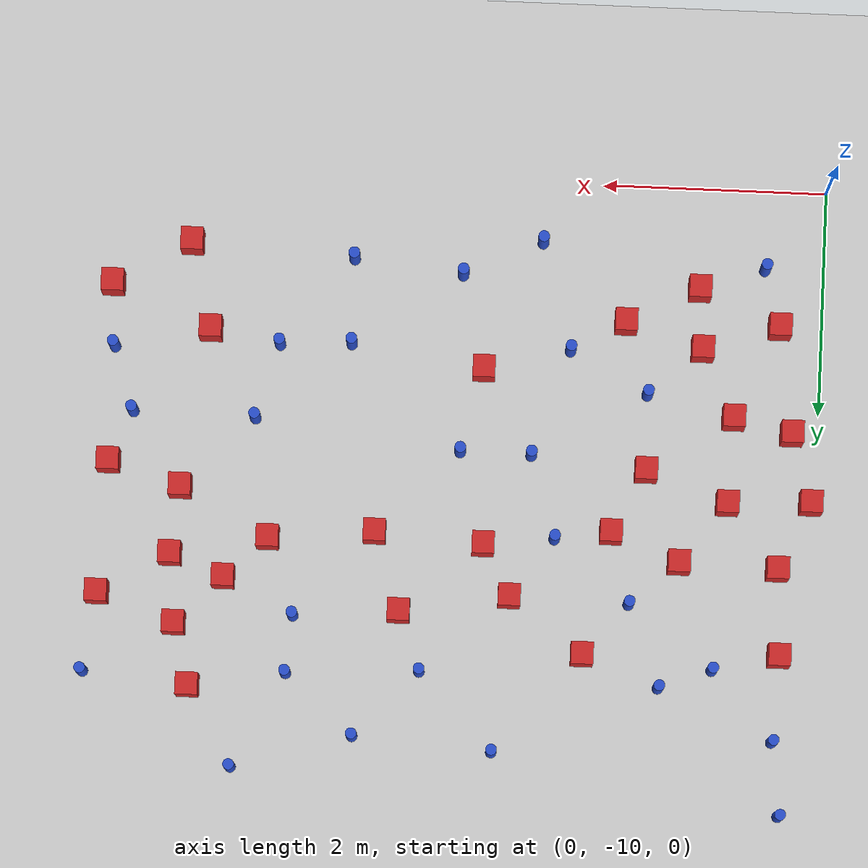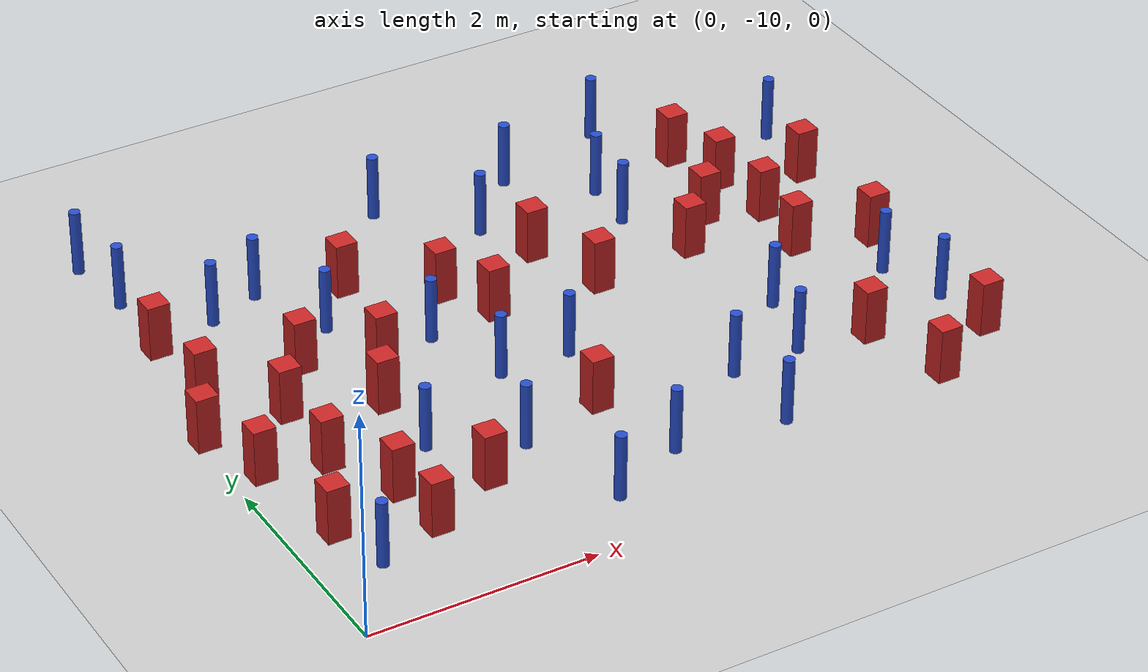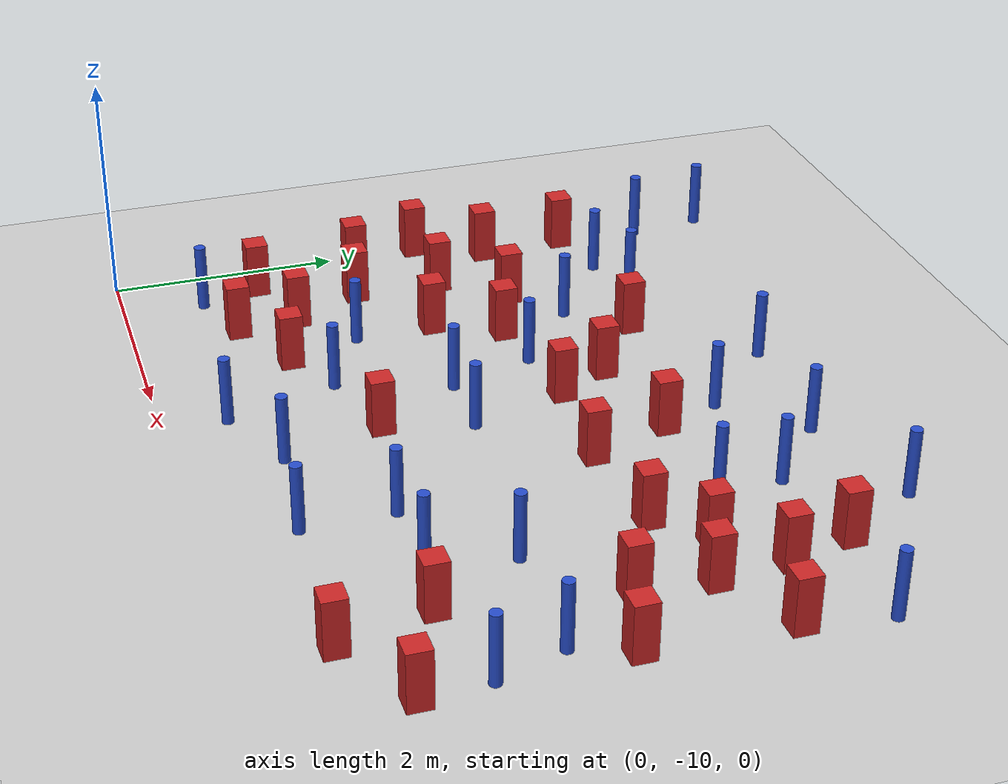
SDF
<sdf version="1.6">
 <world name="default">
  <model name="ground_plane">
   <static>1</static>
   <link name="link">
    <collision name="collision">
     <geometry><plane><normal>0 0 1</normal><size>100 100</size></plane></geometry>
     <surface><friction><ode><mu>100</mu><mu2>50</mu2></ode></friction></surface>
    </collision>
    <visual name="visual">
     <cast_shadows>0</cast_shadows>
     <geometry><plane><normal>0 0 1</normal><size>100 100</size></plane></geometry>
     <material>
      <ambient>1.0 1.0 1.0 1.0</ambient>
      <diffuse>0.8 0.8 0.8 1.0</diffuse>
      <specular>0.01 0.01 0.01 1.000000</specular>
     </material>
    </visual>
   </link>
  </model>
  <model name="square_post_obstacle17">
   <static>true</static>
   <pose>0.378305085071 -8.76689571817 1.91545236811e-07 -7.35059704564e-06 1.12565212e-07 2.39332434364e-05</pose>
   <link name="link">
    <pose>0 0 0.25 0 -0 0</pose>
    <inertial>
     <mass>100</mass>
     <inertia>
      <ixx>0.166667</ixx>
      <ixy>0</ixy>
      <ixz>0</ixz>
      <iyy>0.166667</iyy>
      <iyz>0</iyz>
      <izz>0.166667</izz>
     </inertia>
    </inertial>
    <collision name="collision"><geometry><box><size>.2 .2 .5</size></box></geometry></collision>
    <visual name="visual">
     <geometry><box><size>.2 .2 .5</size></box></geometry>
     <material>
      <script><name>Gazebo/Red</name><uri>file://media/materials/scripts/gazebo.material</uri></script>
     </material>
    </visual>
   </link>
  </model>
  <model name="square_post_obstacle18">
   <static>true</static>
   <pose>1.75431721817 -8.75832268951 1.91545236811e-07 -7.35059704564e-06 1.12565212e-07 2.39332434364e-05</pose>
   <link name="link">
    <pose>0 0 0.25 0 -0 0</pose>
    <inertial>
     <mass>100</mass>
     <inertia>
      <ixx>0.166667</ixx>
      <ixy>0</ixy>
      <ixz>0</ixz>
      <iyy>0.166667</iyy>
      <iyz>0</iyz>
      <izz>0.166667</izz>
     </inertia>
    </inertial>
    <collision name="collision"><geometry><box><size>.2 .2 .5</size></box></geometry></collision>
    <visual name="visual">
     <geometry><box><size>.2 .2 .5</size></box></geometry>
     <material>
      <script><name>Gazebo/Red</name><uri>file://media/materials/scripts/gazebo.material</uri></script>
     </material>
    </visual>
   </link>
  </model>
  <model name="square_post_obstacle20">
   <static>true</static>
   <pose>1.10523010317 -9.08272756877 1.91545236811e-07 -7.35059704564e-06 1.12565212e-07 2.39332434364e-05</pose>
   <link name="link">
    <pose>0 0 0.25 0 -0 0</pose>
    <inertial>
     <mass>100</mass>
     <inertia>
      <ixx>0.166667</ixx>
      <ixy>0</ixy>
      <ixz>0</ixz>
      <iyy>0.166667</iyy>
      <iyz>0</iyz>
      <izz>0.166667</izz>
     </inertia>
    </inertial>
    <collision name="collision"><geometry><box><size>.2 .2 .5</size></box></geometry></collision>
    <visual name="visual">
     <geometry><box><size>.2 .2 .5</size></box></geometry>
     <material>
      <script><name>Gazebo/Red</name><uri>file://media/materials/scripts/gazebo.material</uri></script>
     </material>
    </visual>
   </link>
  </model>
  <model name="pole_obstacle12">
   <static>true</static>
   <pose>5.12868795142 -4.64596688492 7.38925637345e-09 -8.47170692796e-08 1.24976764786e-08 -1.74513093032e-07</pose>
   <link name="link">
    <pose>0 0 0.3 0 -0 0</pose>
    <inertial>
     <mass>1</mass>
     <inertia><ixx>0.145833</ixx><ixy>0</ixy><ixz>0</ixz><iyy>0.145833</iyy><iyz>0</iyz><izz>0.125</izz></inertia>
    </inertial>
    <collision name="collision">
     <geometry><cylinder><radius>0.05</radius><length>.6</length></cylinder></geometry>
    </collision>
    <visual name="visual">
     <geometry><cylinder><radius>0.05</radius><length>.6</length></cylinder></geometry>
     <material>
      <script><name>Gazebo/Blue</name><uri>file://media/materials/scripts/gazebo.material</uri></script>
     </material>
    </visual>
   </link>
  </model>
  <model name="pole_obstacle17">
   <static>true</static>
   <pose>2.55404424358 -7.53747133747 7.38925637345e-09 -8.47170692798e-08 1.24976765033e-08 -1.74513093019e-07</pose>
   <link name="link">
    <pose>0 0 0.3 0 -0 0</pose>
    <inertial>
     <mass>1</mass>
     <inertia><ixx>0.145833</ixx><ixy>0</ixy><ixz>0</ixz><iyy>0.145833</iyy><iyz>0</iyz><izz>0.125</izz></inertia>
    </inertial>
    <collision name="collision">
     <geometry><cylinder><radius>0.05</radius><length>.6</length></cylinder></geometry>
    </collision>
    <visual name="visual">
     <geometry><cylinder><radius>0.05</radius><length>.6</length></cylinder></geometry>
     <material>
      <script><name>Gazebo/Blue</name><uri>file://media/materials/scripts/gazebo.material</uri></script>
     </material>
    </visual>
   </link>
  </model>
  <model name="square_post_obstacle28">
   <static>true</static>
   <pose>4.87596117237 -6.70116491574 1.91545236811e-07 -7.35059704564e-06 1.12565212e-07 2.39332434364e-05</pose>
   <link name="link">
    <pose>0 0 0.25 0 -0 0</pose>
    <inertial>
     <mass>100</mass>
     <inertia>
      <ixx>0.166667</ixx>
      <ixy>0</ixy>
      <ixz>0</ixz>
      <iyy>0.166667</iyy>
      <iyz>0</iyz>
      <izz>0.166667</izz>
     </inertia>
    </inertial>
    <collision name="collision"><geometry><box><size>.2 .2 .5</size></box></geometry></collision>
    <visual name="visual">
     <geometry><box><size>.2 .2 .5</size></box></geometry>
     <material>
      <script><name>Gazebo/Red</name><uri>file://media/materials/scripts/gazebo.material</uri></script>
     </material>
    </visual>
   </link>
  </model>
  <model name="pole_obstacle23">
   <static>true</static>
   <pose>4.83909633867 -8.44591866504 7.38925637345e-09 -8.471706928e-08 1.24976765081e-08 -1.74513093015e-07</pose>
   <link name="link">
    <pose>0 0 0.3 0 -0 0</pose>
    <inertial>
     <mass>1</mass>
     <inertia><ixx>0.145833</ixx><ixy>0</ixy><ixz>0</ixz><iyy>0.145833</iyy><iyz>0</iyz><izz>0.125</izz></inertia>
    </inertial>
    <collision name="collision">
     <geometry><cylinder><radius>0.05</radius><length>.6</length></cylinder></geometry>
    </collision>
    <visual name="visual">
     <geometry><cylinder><radius>0.05</radius><length>.6</length></cylinder></geometry>
     <material>
      <script><name>Gazebo/Blue</name><uri>file://media/materials/scripts/gazebo.material</uri></script>
     </material>
    </visual>
   </link>
  </model>
  <model name="square_post_obstacle37">
   <static>true</static>
   <pose>0.789755599184 -7.16678576911 1.91545236811e-07 -7.35059704564e-06 1.12565212e-07 2.39332434364e-05</pose>
   <link name="link">
    <pose>0 0 0.25 0 -0 0</pose>
    <inertial>
     <mass>100</mass>
     <inertia>
      <ixx>0.166667</ixx>
      <ixy>0</ixy>
      <ixz>0</ixz>
      <iyy>0.166667</iyy>
      <iyz>0</iyz>
      <izz>0.166667</izz>
     </inertia>
    </inertial>
    <collision name="collision"><geometry><box><size>.2 .2 .5</size></box></geometry></collision>
    <visual name="visual">
     <geometry><box><size>.2 .2 .5</size></box></geometry>
     <material>
      <script><name>Gazebo/Red</name><uri>file://media/materials/scripts/gazebo.material</uri></script>
     </material>
    </visual>
   </link>
  </model>
  <model name="square_post_obstacle38">
   <static>true</static>
   <pose>0.28171391476 -5.82311610043 1.91545236811e-07 -7.35059704564e-06 1.12565212e-07 2.39332434364e-05</pose>
   <link name="link">
    <pose>0 0 0.25 0 -0 0</pose>
    <inertial>
     <mass>100</mass>
     <inertia>
      <ixx>0.166667</ixx>
      <ixy>0</ixy>
      <ixz>0</ixz>
      <iyy>0.166667</iyy>
      <iyz>0</iyz>
      <izz>0.166667</izz>
     </inertia>
    </inertial>
    <collision name="collision"><geometry><box><size>.2 .2 .5</size></box></geometry></collision>
    <visual name="visual">
     <geometry><box><size>.2 .2 .5</size></box></geometry>
     <material>
      <script><name>Gazebo/Red</name><uri>file://media/materials/scripts/gazebo.material</uri></script>
     </material>
    </visual>
   </link>
  </model>
  <model name="square_post_obstacle46">
   <static>true</static>
   <pose>0.761725704629 -7.93575048739 1.91545236811e-07 -7.35059704564e-06 1.12565212e-07 2.39332434364e-05</pose>
   <link name="link">
    <pose>0 0 0.25 0 -0 0</pose>
    <inertial>
     <mass>100</mass>
     <inertia>
      <ixx>0.166667</ixx>
      <ixy>0</ixy>
      <ixz>0</ixz>
      <iyy>0.166667</iyy>
      <iyz>0</iyz>
      <izz>0.166667</izz>
     </inertia>
    </inertial>
    <collision name="collision"><geometry><box><size>.2 .2 .5</size></box></geometry></collision>
    <visual name="visual">
     <geometry><box><size>.2 .2 .5</size></box></geometry>
     <material>
      <script><name>Gazebo/Red</name><uri>file://media/materials/scripts/gazebo.material</uri></script>
     </material>
    </visual>
   </link>
  </model>
  <model name="pole_obstacle47">
   <static>true</static>
   <pose>5.03255721276 -7.77409203285 7.38925637345e-09 -8.47170692796e-08 1.24976764786e-08 -1.74513093032e-07</pose>
   <link name="link">
    <pose>0 0 0.3 0 -0 0</pose>
    <inertial>
     <mass>1</mass>
     <inertia><ixx>0.145833</ixx><ixy>0</ixy><ixz>0</ixz><iyy>0.145833</iyy><iyz>0</iyz><izz>0.125</izz></inertia>
    </inertial>
    <collision name="collision">
     <geometry><cylinder><radius>0.05</radius><length>.6</length></cylinder></geometry>
    </collision>
    <visual name="visual">
     <geometry><cylinder><radius>0.05</radius><length>.6</length></cylinder></geometry>
     <material>
      <script><name>Gazebo/Blue</name><uri>file://media/materials/scripts/gazebo.material</uri></script>
     </material>
    </visual>
   </link>
  </model>
  <model name="pole_obstacle51">
   <static>true</static>
   <pose>3.22430424299 -9.13767758428 7.38925637345e-09 -8.47170692793e-08 1.24976764408e-08 -1.74513093041e-07</pose>
   <link name="link">
    <pose>0 0 0.3 0 -0 0</pose>
    <inertial>
     <mass>1</mass>
     <inertia><ixx>0.145833</ixx><ixy>0</ixy><ixz>0</ixz><iyy>0.145833</iyy><iyz>0</iyz><izz>0.125</izz></inertia>
    </inertial>
    <collision name="collision">
     <geometry><cylinder><radius>0.05</radius><length>.6</length></cylinder></geometry>
    </collision>
    <visual name="visual">
     <geometry><cylinder><radius>0.05</radius><length>.6</length></cylinder></geometry>
     <material>
      <script><name>Gazebo/Blue</name><uri>file://media/materials/scripts/gazebo.material</uri></script>
     </material>
    </visual>
   </link>
  </model>
  <model name="square_post_obstacle58">
   <static>true</static>
   <pose>1.20276633188 -6.62121261251 1.91545236811e-07 -7.35059704564e-06 1.12565212e-07 2.39332434364e-05</pose>
   <link name="link">
    <pose>0 0 0.25 0 -0 0</pose>
    <inertial>
     <mass>100</mass>
     <inertia>
      <ixx>0.166667</ixx>
      <ixy>0</ixy>
      <ixz>0</ixz>
      <iyy>0.166667</iyy>
      <iyz>0</iyz>
      <izz>0.166667</izz>
     </inertia>
    </inertial>
    <collision name="collision"><geometry><box><size>.2 .2 .5</size></box></geometry></collision>
    <visual name="visual">
     <geometry><box><size>.2 .2 .5</size></box></geometry>
     <material>
      <script><name>Gazebo/Red</name><uri>file://media/materials/scripts/gazebo.material</uri></script>
     </material>
    </visual>
   </link>
  </model>
  <model name="square_post_obstacle63">
   <static>true</static>
   <pose>2.95366800294 -6.71618311953 1.91545236811e-07 -7.35059704564e-06 1.12565212e-07 2.39332434364e-05</pose>
   <link name="link">
    <pose>0 0 0.25 0 -0 0</pose>
    <inertial>
     <mass>100</mass>
     <inertia>
      <ixx>0.166667</ixx>
      <ixy>0</ixy>
      <ixz>0</ixz>
      <iyy>0.166667</iyy>
      <iyz>0</iyz>
      <izz>0.166667</izz>
     </inertia>
    </inertial>
    <collision name="collision"><geometry><box><size>.2 .2 .5</size></box></geometry></collision>
    <visual name="visual">
     <geometry><box><size>.2 .2 .5</size></box></geometry>
     <material>
      <script><name>Gazebo/Red</name><uri>file://media/materials/scripts/gazebo.material</uri></script>
     </material>
    </visual>
   </link>
  </model>
  <model name="pole_obstacle63">
   <static>true</static>
   <pose>2.31922506591 -6.79592885103 7.38925637345e-09 -8.47170692798e-08 1.24976765033e-08 -1.74513093019e-07</pose>
   <link name="link">
    <pose>0 0 0.3 0 -0 0</pose>
    <inertial>
     <mass>1</mass>
     <inertia><ixx>0.145833</ixx><ixy>0</ixy><ixz>0</ixz><iyy>0.145833</iyy><iyz>0</iyz><izz>0.125</izz></inertia>
    </inertial>
    <collision name="collision">
     <geometry><cylinder><radius>0.05</radius><length>.6</length></cylinder></geometry>
    </collision>
    <visual name="visual">
     <geometry><cylinder><radius>0.05</radius><length>.6</length></cylinder></geometry>
     <material>
      <script><name>Gazebo/Blue</name><uri>file://media/materials/scripts/gazebo.material</uri></script>
     </material>
    </visual>
   </link>
  </model>
  <model name="pole_obstacle64">
   <static>true</static>
   <pose>3.19070139623 -7.54454058409 7.38925637345e-09 -8.47170692798e-08 1.24976765033e-08 -1.74513093019e-07</pose>
   <link name="link">
    <pose>0 0 0.3 0 -0 0</pose>
    <inertial>
     <mass>1</mass>
     <inertia><ixx>0.145833</ixx><ixy>0</ixy><ixz>0</ixz><iyy>0.145833</iyy><iyz>0</iyz><izz>0.125</izz></inertia>
    </inertial>
    <collision name="collision">
     <geometry><cylinder><radius>0.05</radius><length>.6</length></cylinder></geometry>
    </collision>
    <visual name="visual">
     <geometry><cylinder><radius>0.05</radius><length>.6</length></cylinder></geometry>
     <material>
      <script><name>Gazebo/Blue</name><uri>file://media/materials/scripts/gazebo.material</uri></script>
     </material>
    </visual>
   </link>
  </model>
  <model name="pole_obstacle65">
   <static>true</static>
   <pose>2.80988441351 -4.86871157871 7.38925637345e-09 -8.47170692798e-08 1.24976765033e-08 -1.74513093019e-07</pose>
   <link name="link">
    <pose>0 0 0.3 0 -0 0</pose>
    <inertial>
     <mass>1</mass>
     <inertia><ixx>0.145833</ixx><ixy>0</ixy><ixz>0</ixz><iyy>0.145833</iyy><iyz>0</iyz><izz>0.125</izz></inertia>
    </inertial>
    <collision name="collision">
     <geometry><cylinder><radius>0.05</radius><length>.6</length></cylinder></geometry>
    </collision>
    <visual name="visual">
     <geometry><cylinder><radius>0.05</radius><length>.6</length></cylinder></geometry>
     <material>
      <script><name>Gazebo/Blue</name><uri>file://media/materials/scripts/gazebo.material</uri></script>
     </material>
    </visual>
   </link>
  </model>
  <model name="square_post_obstacle72">
   <static>true</static>
   <pose>5.74209541213 -6.52342863693 1.91545236811e-07 -7.35059704564e-06 1.12565212e-07 2.39332434364e-05</pose>
   <link name="link">
    <pose>0 0 0.25 0 -0 0</pose>
    <inertial>
     <mass>100</mass>
     <inertia>
      <ixx>0.166667</ixx>
      <ixy>0</ixy>
      <ixz>0</ixz>
      <iyy>0.166667</iyy>
      <iyz>0</iyz>
      <izz>0.166667</izz>
     </inertia>
    </inertial>
    <collision name="collision"><geometry><box><size>.2 .2 .5</size></box></geometry></collision>
    <visual name="visual">
     <geometry><box><size>.2 .2 .5</size></box></geometry>
     <material>
      <script><name>Gazebo/Red</name><uri>file://media/materials/scripts/gazebo.material</uri></script>
     </material>
    </visual>
   </link>
  </model>
  <model name="square_post_obstacle73">
   <static>true</static>
   <pose>3.68331431098 -6.08949857264 1.91545236811e-07 -7.35059704564e-06 1.12565212e-07 2.39332434364e-05</pose>
   <link name="link">
    <pose>0 0 0.25 0 -0 0</pose>
    <inertial>
     <mass>100</mass>
     <inertia>
      <ixx>0.166667</ixx>
      <ixy>0</ixy>
      <ixz>0</ixz>
      <iyy>0.166667</iyy>
      <iyz>0</iyz>
      <izz>0.166667</izz>
     </inertia>
    </inertial>
    <collision name="collision"><geometry><box><size>.2 .2 .5</size></box></geometry></collision>
    <visual name="visual">
     <geometry><box><size>.2 .2 .5</size></box></geometry>
     <material>
      <script><name>Gazebo/Red</name><uri>file://media/materials/scripts/gazebo.material</uri></script>
     </material>
    </visual>
   </link>
  </model>
  <model name="pole_obstacle71">
   <static>true</static>
   <pose>4.19760687617 -8.47725525258 7.38925637345e-09 -8.471706928e-08 1.24976765081e-08 -1.74513093015e-07</pose>
   <link name="link">
    <pose>0 0 0.3 0 -0 0</pose>
    <inertial>
     <mass>1</mass>
     <inertia><ixx>0.145833</ixx><ixy>0</ixy><ixz>0</ixz><iyy>0.145833</iyy><iyz>0</iyz><izz>0.125</izz></inertia>
    </inertial>
    <collision name="collision">
     <geometry><cylinder><radius>0.05</radius><length>.6</length></cylinder></geometry>
    </collision>
    <visual name="visual">
     <geometry><cylinder><radius>0.05</radius><length>.6</length></cylinder></geometry>
     <material>
      <script><name>Gazebo/Blue</name><uri>file://media/materials/scripts/gazebo.material</uri></script>
     </material>
    </visual>
   </link>
  </model>
  <model name="pole_obstacle75">
   <static>true</static>
   <pose>0.233361145274 -4.39597385954 7.38925637345e-09 -8.471706928e-08 1.24976765124e-08 -1.74513093014e-07</pose>
   <link name="link">
    <pose>0 0 0.3 0 -0 0</pose>
    <inertial>
     <mass>1</mass>
     <inertia><ixx>0.145833</ixx><ixy>0</ixy><ixz>0</ixz><iyy>0.145833</iyy><iyz>0</iyz><izz>0.125</izz></inertia>
    </inertial>
    <collision name="collision">
     <geometry><cylinder><radius>0.05</radius><length>.6</length></cylinder></geometry>
    </collision>
    <visual name="visual">
     <geometry><cylinder><radius>0.05</radius><length>.6</length></cylinder></geometry>
     <material>
      <script><name>Gazebo/Blue</name><uri>file://media/materials/scripts/gazebo.material</uri></script>
     </material>
    </visual>
   </link>
  </model>
  <model name="pole_obstacle88">
   <static>true</static>
   <pose>4.20229255505 -9.24324750124 7.38925637345e-09 -8.471706928e-08 1.24976765081e-08 -1.74513093015e-07</pose>
   <link name="link">
    <pose>0 0 0.3 0 -0 0</pose>
    <inertial>
     <mass>1</mass>
     <inertia><ixx>0.145833</ixx><ixy>0</ixy><ixz>0</ixz><iyy>0.145833</iyy><iyz>0</iyz><izz>0.125</izz></inertia>
    </inertial>
    <collision name="collision">
     <geometry><cylinder><radius>0.05</radius><length>.6</length></cylinder></geometry>
    </collision>
    <visual name="visual">
     <geometry><cylinder><radius>0.05</radius><length>.6</length></cylinder></geometry>
     <material>
      <script><name>Gazebo/Blue</name><uri>file://media/materials/scripts/gazebo.material</uri></script>
     </material>
    </visual>
   </link>
  </model>
  <model name="pole_obstacle89">
   <static>true</static>
   <pose>4.67002716713 -5.50127685613 7.38925637345e-09 -8.47170692796e-08 1.24976764786e-08 -1.74513093032e-07</pose>
   <link name="link">
    <pose>0 0 0.3 0 -0 0</pose>
    <inertial>
     <mass>1</mass>
     <inertia><ixx>0.145833</ixx><ixy>0</ixy><ixz>0</ixz><iyy>0.145833</iyy><iyz>0</iyz><izz>0.125</izz></inertia>
    </inertial>
    <collision name="collision">
     <geometry><cylinder><radius>0.05</radius><length>.6</length></cylinder></geometry>
    </collision>
    <visual name="visual">
     <geometry><cylinder><radius>0.05</radius><length>.6</length></cylinder></geometry>
     <material>
      <script><name>Gazebo/Blue</name><uri>file://media/materials/scripts/gazebo.material</uri></script>
     </material>
    </visual>
   </link>
  </model>
  <model name="square_post_obstacle86">
   <static>true</static>
   <pose>5.6742882965 -7.12790045247 1.91545236811e-07 -7.35059704564e-06 1.12565212e-07 2.39332434364e-05</pose>
   <link name="link">
    <pose>0 0 0.25 0 -0 0</pose>
    <inertial>
     <mass>100</mass>
     <inertia>
      <ixx>0.166667</ixx>
      <ixy>0</ixy>
      <ixz>0</ixz>
      <iyy>0.166667</iyy>
      <iyz>0</iyz>
      <izz>0.166667</izz>
     </inertia>
    </inertial>
    <collision name="collision"><geometry><box><size>.2 .2 .5</size></box></geometry></collision>
    <visual name="visual">
     <geometry><box><size>.2 .2 .5</size></box></geometry>
     <material>
      <script><name>Gazebo/Red</name><uri>file://media/materials/scripts/gazebo.material</uri></script>
     </material>
    </visual>
   </link>
  </model>
  <model name="square_post_obstacle88">
   <static>true</static>
   <pose>5.65800390586 -9.32707592676 1.91545236811e-07 -7.35059704564e-06 1.12565212e-07 2.39332434364e-05</pose>
   <link name="link">
    <pose>0 0 0.25 0 -0 0</pose>
    <inertial>
     <mass>100</mass>
     <inertia>
      <ixx>0.166667</ixx>
      <ixy>0</ixy>
      <ixz>0</ixz>
      <iyy>0.166667</iyy>
      <iyz>0</iyz>
      <izz>0.166667</izz>
     </inertia>
    </inertial>
    <collision name="collision"><geometry><box><size>.2 .2 .5</size></box></geometry></collision>
    <visual name="visual">
     <geometry><box><size>.2 .2 .5</size></box></geometry>
     <material>
      <script><name>Gazebo/Red</name><uri>file://media/materials/scripts/gazebo.material</uri></script>
     </material>
    </visual>
   </link>
  </model>
  <model name="square_post_obstacle89">
   <static>true</static>
   <pose>5.53662648617 -5.3548079058 1.91545236811e-07 -7.35059704564e-06 1.12565212e-07 2.39332434364e-05</pose>
   <link name="link">
    <pose>0 0 0.25 0 -0 0</pose>
    <inertial>
     <mass>100</mass>
     <inertia>
      <ixx>0.166667</ixx>
      <ixy>0</ixy>
      <ixz>0</ixz>
      <iyy>0.166667</iyy>
      <iyz>0</iyz>
      <izz>0.166667</izz>
     </inertia>
    </inertial>
    <collision name="collision"><geometry><box><size>.2 .2 .5</size></box></geometry></collision>
    <visual name="visual">
     <geometry><box><size>.2 .2 .5</size></box></geometry>
     <material>
      <script><name>Gazebo/Red</name><uri>file://media/materials/scripts/gazebo.material</uri></script>
     </material>
    </visual>
   </link>
  </model>
  <model name="square_post_obstacle92">
   <static>true</static>
   <pose>6.37862301892 -6.15410817481 1.91545236811e-07 -7.35059704564e-06 1.12565212e-07 2.39332434364e-05</pose>
   <link name="link">
    <pose>0 0 0.25 0 -0 0</pose>
    <inertial>
     <mass>100</mass>
     <inertia>
      <ixx>0.166667</ixx>
      <ixy>0</ixy>
      <ixz>0</ixz>
      <iyy>0.166667</iyy>
      <iyz>0</iyz>
      <izz>0.166667</izz>
     </inertia>
    </inertial>
    <collision name="collision"><geometry><box><size>.2 .2 .5</size></box></geometry></collision>
    <visual name="visual">
     <geometry><box><size>.2 .2 .5</size></box></geometry>
     <material>
      <script><name>Gazebo/Red</name><uri>file://media/materials/scripts/gazebo.material</uri></script>
     </material>
    </visual>
   </link>
  </model>
  <model name="pole_obstacle105">
   <static>true</static>
   <pose>1.53652034161 -8.12126775 7.38925637345e-09 -8.47170692798e-08 1.24976764881e-08 -1.74513093027e-07</pose>
   <link name="link">
    <pose>0 0 0.3 0 -0 0</pose>
    <inertial>
     <mass>1</mass>
     <inertia><ixx>0.145833</ixx><ixy>0</ixy><ixz>0</ixz><iyy>0.145833</iyy><iyz>0</iyz><izz>0.125</izz></inertia>
    </inertial>
    <collision name="collision">
     <geometry><cylinder><radius>0.05</radius><length>.6</length></cylinder></geometry>
    </collision>
    <visual name="visual">
     <geometry><cylinder><radius>0.05</radius><length>.6</length></cylinder></geometry>
     <material>
      <script><name>Gazebo/Blue</name><uri>file://media/materials/scripts/gazebo.material</uri></script>
     </material>
    </visual>
   </link>
  </model>
  <model name="pole_obstacle107">
   <static>true</static>
   <pose>2.23849001193 -8.49119945973 7.38925637345e-09 -8.47170692793e-08 1.24976764408e-08 -1.74513093041e-07</pose>
   <link name="link">
    <pose>0 0 0.3 0 -0 0</pose>
    <inertial>
     <mass>1</mass>
     <inertia><ixx>0.145833</ixx><ixy>0</ixy><ixz>0</ixz><iyy>0.145833</iyy><iyz>0</iyz><izz>0.125</izz></inertia>
    </inertial>
    <collision name="collision">
     <geometry><cylinder><radius>0.05</radius><length>.6</length></cylinder></geometry>
    </collision>
    <visual name="visual">
     <geometry><cylinder><radius>0.05</radius><length>.6</length></cylinder></geometry>
     <material>
      <script><name>Gazebo/Blue</name><uri>file://media/materials/scripts/gazebo.material</uri></script>
     </material>
    </visual>
   </link>
  </model>
  <model name="pole_obstacle115">
   <static>true</static>
   <pose>4.05587151861 -4.96254253533 7.38925637345e-09 -8.47170692796e-08 1.24976764786e-08 -1.74513093032e-07</pose>
   <link name="link">
    <pose>0 0 0.3 0 -0 0</pose>
    <inertial>
     <mass>1</mass>
     <inertia><ixx>0.145833</ixx><ixy>0</ixy><ixz>0</ixz><iyy>0.145833</iyy><iyz>0</iyz><izz>0.125</izz></inertia>
    </inertial>
    <collision name="collision">
     <geometry><cylinder><radius>0.05</radius><length>.6</length></cylinder></geometry>
    </collision>
    <visual name="visual">
     <geometry><cylinder><radius>0.05</radius><length>.6</length></cylinder></geometry>
     <material>
      <script><name>Gazebo/Blue</name><uri>file://media/materials/scripts/gazebo.material</uri></script>
     </material>
    </visual>
   </link>
  </model>
  <model name="square_post_obstacle103">
   <static>true</static>
   <pose>3.92553395028 -6.78927389204 1.91545236811e-07 -7.35059704564e-06 1.12565212e-07 2.39332434364e-05</pose>
   <link name="link">
    <pose>0 0 0.25 0 -0 0</pose>
    <inertial>
     <mass>100</mass>
     <inertia>
      <ixx>0.166667</ixx>
      <ixy>0</ixy>
      <ixz>0</ixz>
      <iyy>0.166667</iyy>
      <iyz>0</iyz>
      <izz>0.166667</izz>
     </inertia>
    </inertial>
    <collision name="collision"><geometry><box><size>.2 .2 .5</size></box></geometry></collision>
    <visual name="visual">
     <geometry><box><size>.2 .2 .5</size></box></geometry>
     <material>
      <script><name>Gazebo/Red</name><uri>file://media/materials/scripts/gazebo.material</uri></script>
     </material>
    </visual>
   </link>
  </model>
  <model name="square_post_obstacle112">
   <static>true</static>
   <pose>6.35057290815 -8.93081582181 1.91545236811e-07 -7.35059704564e-06 1.12565212e-07 2.39332434364e-05</pose>
   <link name="link">
    <pose>0 0 0.25 0 -0 0</pose>
    <inertial>
     <mass>100</mass>
     <inertia>
      <ixx>0.166667</ixx>
      <ixy>0</ixy>
      <ixz>0</ixz>
      <iyy>0.166667</iyy>
      <iyz>0</iyz>
      <izz>0.166667</izz>
     </inertia>
    </inertial>
    <collision name="collision"><geometry><box><size>.2 .2 .5</size></box></geometry></collision>
    <visual name="visual">
     <geometry><box><size>.2 .2 .5</size></box></geometry>
     <material>
      <script><name>Gazebo/Red</name><uri>file://media/materials/scripts/gazebo.material</uri></script>
     </material>
    </visual>
   </link>
  </model>
  <model name="pole_obstacle127">
   <static>true</static>
   <pose>0.314163529879 -5.05606406631 7.38925637345e-09 -8.471706928e-08 1.24976765079e-08 -1.74513093015e-07</pose>
   <link name="link">
    <pose>0 0 0.3 0 -0 0</pose>
    <inertial>
     <mass>1</mass>
     <inertia><ixx>0.145833</ixx><ixy>0</ixy><ixz>0</ixz><iyy>0.145833</iyy><iyz>0</iyz><izz>0.125</izz></inertia>
    </inertial>
    <collision name="collision">
     <geometry><cylinder><radius>0.05</radius><length>.6</length></cylinder></geometry>
    </collision>
    <visual name="visual">
     <geometry><cylinder><radius>0.05</radius><length>.6</length></cylinder></geometry>
     <material>
      <script><name>Gazebo/Blue</name><uri>file://media/materials/scripts/gazebo.material</uri></script>
     </material>
    </visual>
   </link>
  </model>
  <model name="pole_obstacle130">
   <static>true</static>
   <pose>0.524572568687 -9.28761352204 7.38925637345e-09 -8.47170692797e-08 1.24976764765e-08 -1.74513093034e-07</pose>
   <link name="link">
    <pose>0 0 0.3 0 -0 0</pose>
    <inertial>
     <mass>1</mass>
     <inertia><ixx>0.145833</ixx><ixy>0</ixy><ixz>0</ixz><iyy>0.145833</iyy><iyz>0</iyz><izz>0.125</izz></inertia>
    </inertial>
    <collision name="collision">
     <geometry><cylinder><radius>0.05</radius><length>.6</length></cylinder></geometry>
    </collision>
    <visual name="visual">
     <geometry><cylinder><radius>0.05</radius><length>.6</length></cylinder></geometry>
     <material>
      <script><name>Gazebo/Blue</name><uri>file://media/materials/scripts/gazebo.material</uri></script>
     </material>
    </visual>
   </link>
  </model>
  <model name="pole_obstacle133">
   <static>true</static>
   <pose>0.871289480119 -5.67543758616 7.38925637345e-09 -8.471706928e-08 1.24976765086e-08 -1.74513093015e-07</pose>
   <link name="link">
    <pose>0 0 0.3 0 -0 0</pose>
    <inertial>
     <mass>1</mass>
     <inertia><ixx>0.145833</ixx><ixy>0</ixy><ixz>0</ixz><iyy>0.145833</iyy><iyz>0</iyz><izz>0.125</izz></inertia>
    </inertial>
    <collision name="collision">
     <geometry><cylinder><radius>0.05</radius><length>.6</length></cylinder></geometry>
    </collision>
    <visual name="visual">
     <geometry><cylinder><radius>0.05</radius><length>.6</length></cylinder></geometry>
     <material>
      <script><name>Gazebo/Blue</name><uri>file://media/materials/scripts/gazebo.material</uri></script>
     </material>
    </visual>
   </link>
  </model>
  <model name="square_post_obstacle117">
   <static>true</static>
   <pose>3.00819275113 -8.28913289594 1.91545236811e-07 -7.35059704564e-06 1.12565212e-07 2.39332434364e-05</pose>
   <link name="link">
    <pose>0 0 0.25 0 -0 0</pose>
    <inertial>
     <mass>100</mass>
     <inertia>
      <ixx>0.166667</ixx>
      <ixy>0</ixy>
      <ixz>0</ixz>
      <iyy>0.166667</iyy>
      <iyz>0</iyz>
      <izz>0.166667</izz>
     </inertia>
    </inertial>
    <collision name="collision"><geometry><box><size>.2 .2 .5</size></box></geometry></collision>
    <visual name="visual">
     <geometry><box><size>.2 .2 .5</size></box></geometry>
     <material>
      <script><name>Gazebo/Red</name><uri>file://media/materials/scripts/gazebo.material</uri></script>
     </material>
    </visual>
   </link>
  </model>
  <model name="pole_obstacle143">
   <static>true</static>
   <pose>4.62696375699 -6.01925612426 7.38925637345e-09 -8.47170692796e-08 1.24976764786e-08 -1.74513093032e-07</pose>
   <link name="link">
    <pose>0 0 0.3 0 -0 0</pose>
    <inertial>
     <mass>1</mass>
     <inertia><ixx>0.145833</ixx><ixy>0</ixy><ixz>0</ixz><iyy>0.145833</iyy><iyz>0</iyz><izz>0.125</izz></inertia>
    </inertial>
    <collision name="collision">
     <geometry><cylinder><radius>0.05</radius><length>.6</length></cylinder></geometry>
    </collision>
    <visual name="visual">
     <geometry><cylinder><radius>0.05</radius><length>.6</length></cylinder></geometry>
     <material>
      <script><name>Gazebo/Blue</name><uri>file://media/materials/scripts/gazebo.material</uri></script>
     </material>
    </visual>
   </link>
  </model>
  <model name="pole_obstacle145">
   <static>true</static>
   <pose>1.63512284662 -6.23666288575 7.38925637345e-09 -8.47170692799e-08 1.24976765033e-08 -1.74513093018e-07</pose>
   <link name="link">
    <pose>0 0 0.3 0 -0 0</pose>
    <inertial>
     <mass>1</mass>
     <inertia><ixx>0.145833</ixx><ixy>0</ixy><ixz>0</ixz><iyy>0.145833</iyy><iyz>0</iyz><izz>0.125</izz></inertia>
    </inertial>
    <collision name="collision">
     <geometry><cylinder><radius>0.05</radius><length>.6</length></cylinder></geometry>
    </collision>
    <visual name="visual">
     <geometry><cylinder><radius>0.05</radius><length>.6</length></cylinder></geometry>
     <material>
      <script><name>Gazebo/Blue</name><uri>file://media/materials/scripts/gazebo.material</uri></script>
     </material>
    </visual>
   </link>
  </model>
  <model name="square_post_obstacle143">
   <static>true</static>
   <pose>0.237427977354 -7.81418423528 1.91545236811e-07 -7.35059704564e-06 1.12565212e-07 2.39332434364e-05</pose>
   <link name="link">
    <pose>0 0 0.25 0 -0 0</pose>
    <inertial>
     <mass>100</mass>
     <inertia>
      <ixx>0.166667</ixx>
      <ixy>0</ixy>
      <ixz>0</ixz>
      <iyy>0.166667</iyy>
      <iyz>0</iyz>
      <izz>0.166667</izz>
     </inertia>
    </inertial>
    <collision name="collision"><geometry><box><size>.2 .2 .5</size></box></geometry></collision>
    <visual name="visual">
     <geometry><box><size>.2 .2 .5</size></box></geometry>
     <material>
      <script><name>Gazebo/Red</name><uri>file://media/materials/scripts/gazebo.material</uri></script>
     </material>
    </visual>
   </link>
  </model>
  <model name="square_post_obstacle146">
   <static>true</static>
   <pose>0.321829190205 -6.59639053024 1.91545236811e-07 -7.35059704564e-06 1.12565212e-07 2.39332434364e-05</pose>
   <link name="link">
    <pose>0 0 0.25 0 -0 0</pose>
    <inertial>
     <mass>100</mass>
     <inertia>
      <ixx>0.166667</ixx>
      <ixy>0</ixy>
      <ixz>0</ixz>
      <iyy>0.166667</iyy>
      <iyz>0</iyz>
      <izz>0.166667</izz>
     </inertia>
    </inertial>
    <collision name="collision"><geometry><box><size>.2 .2 .5</size></box></geometry></collision>
    <visual name="visual">
     <geometry><box><size>.2 .2 .5</size></box></geometry>
     <material>
      <script><name>Gazebo/Red</name><uri>file://media/materials/scripts/gazebo.material</uri></script>
     </material>
    </visual>
   </link>
  </model>
  <model name="square_post_obstacle151">
   <static>true</static>
   <pose>2.03602637776 -5.76624666564 1.91545236811e-07 -7.35059704564e-06 1.12565212e-07 2.39332434364e-05</pose>
   <link name="link">
    <pose>0 0 0.25 0 -0 0</pose>
    <inertial>
     <mass>100</mass>
     <inertia>
      <ixx>0.166667</ixx>
      <ixy>0</ixy>
      <ixz>0</ixz>
      <iyy>0.166667</iyy>
      <iyz>0</iyz>
      <izz>0.166667</izz>
     </inertia>
    </inertial>
    <collision name="collision"><geometry><box><size>.2 .2 .5</size></box></geometry></collision>
    <visual name="visual">
     <geometry><box><size>.2 .2 .5</size></box></geometry>
     <material>
      <script><name>Gazebo/Red</name><uri>file://media/materials/scripts/gazebo.material</uri></script>
     </material>
    </visual>
   </link>
  </model>
  <model name="pole_obstacle158">
   <static>true</static>
   <pose>6.12802127095 -7.79505338765 7.38925637345e-09 -8.47170692796e-08 1.24976764786e-08 -1.74513093032e-07</pose>
   <link name="link">
    <pose>0 0 0.3 0 -0 0</pose>
    <inertial>
     <mass>1</mass>
     <inertia><ixx>0.145833</ixx><ixy>0</ixy><ixz>0</ixz><iyy>0.145833</iyy><iyz>0</iyz><izz>0.125</izz></inertia>
    </inertial>
    <collision name="collision">
     <geometry><cylinder><radius>0.05</radius><length>.6</length></cylinder></geometry>
    </collision>
    <visual name="visual">
     <geometry><cylinder><radius>0.05</radius><length>.6</length></cylinder></geometry>
     <material>
      <script><name>Gazebo/Blue</name><uri>file://media/materials/scripts/gazebo.material</uri></script>
     </material>
    </visual>
   </link>
  </model>
  <model name="pole_obstacle165">
   <static>true</static>
   <pose>1.34443276267 -5.49958120741 7.38925637345e-09 -8.47170692799e-08 1.24976765033e-08 -1.74513093018e-07</pose>
   <link name="link">
    <pose>0 0 0.3 0 -0 0</pose>
    <inertial>
     <mass>1</mass>
     <inertia><ixx>0.145833</ixx><ixy>0</ixy><ixz>0</ixz><iyy>0.145833</iyy><iyz>0</iyz><izz>0.125</izz></inertia>
    </inertial>
    <collision name="collision">
     <geometry><cylinder><radius>0.05</radius><length>.6</length></cylinder></geometry>
    </collision>
    <visual name="visual">
     <geometry><cylinder><radius>0.05</radius><length>.6</length></cylinder></geometry>
     <material>
      <script><name>Gazebo/Blue</name><uri>file://media/materials/scripts/gazebo.material</uri></script>
     </material>
    </visual>
   </link>
  </model>
  <model name="square_post_obstacle158">
   <static>true</static>
   <pose>1.52622962017 -7.43511087467 1.91545236811e-07 -7.35059704564e-06 1.12565212e-07 2.39332434364e-05</pose>
   <link name="link">
    <pose>0 0 0.25 0 -0 0</pose>
    <inertial>
     <mass>100</mass>
     <inertia>
      <ixx>0.166667</ixx>
      <ixy>0</ixy>
      <ixz>0</ixz>
      <iyy>0.166667</iyy>
      <iyz>0</iyz>
      <izz>0.166667</izz>
     </inertia>
    </inertial>
    <collision name="collision"><geometry><box><size>.2 .2 .5</size></box></geometry></collision>
    <visual name="visual">
     <geometry><box><size>.2 .2 .5</size></box></geometry>
     <material>
      <script><name>Gazebo/Red</name><uri>file://media/materials/scripts/gazebo.material</uri></script>
     </material>
    </visual>
   </link>
  </model>
  <model name="pole_obstacle180">
   <static>true</static>
   <pose>2.5202666764 -9.45529722402 7.38925637345e-09 -8.47170692793e-08 1.24976764408e-08 -1.74513093041e-07</pose>
   <link name="link">
    <pose>0 0 0.3 0 -0 0</pose>
    <inertial>
     <mass>1</mass>
     <inertia><ixx>0.145833</ixx><ixy>0</ixy><ixz>0</ixz><iyy>0.145833</iyy><iyz>0</iyz><izz>0.125</izz></inertia>
    </inertial>
    <collision name="collision">
     <geometry><cylinder><radius>0.05</radius><length>.6</length></cylinder></geometry>
    </collision>
    <visual name="visual">
     <geometry><cylinder><radius>0.05</radius><length>.6</length></cylinder></geometry>
     <material>
      <script><name>Gazebo/Blue</name><uri>file://media/materials/scripts/gazebo.material</uri></script>
     </material>
    </visual>
   </link>
  </model>
  <model name="pole_obstacle184">
   <static>true</static>
   <pose>6.48388855117 -5.45019573079 7.38925637345e-09 -8.47170692796e-08 1.24976764786e-08 -1.74513093032e-07</pose>
   <link name="link">
    <pose>0 0 0.3 0 -0 0</pose>
    <inertial>
     <mass>1</mass>
     <inertia><ixx>0.145833</ixx><ixy>0</ixy><ixz>0</ixz><iyy>0.145833</iyy><iyz>0</iyz><izz>0.125</izz></inertia>
    </inertial>
    <collision name="collision">
     <geometry><cylinder><radius>0.05</radius><length>.6</length></cylinder></geometry>
    </collision>
    <visual name="visual">
     <geometry><cylinder><radius>0.05</radius><length>.6</length></cylinder></geometry>
     <material>
      <script><name>Gazebo/Blue</name><uri>file://media/materials/scripts/gazebo.material</uri></script>
     </material>
    </visual>
   </link>
  </model>
  <model name="square_post_obstacle181">
   <static>true</static>
   <pose>6.32508446311 -7.33309931277 1.91545236811e-07 -7.35059704564e-06 1.12565212e-07 2.39332434364e-05</pose>
   <link name="link">
    <pose>0 0 0.25 0 -0 0</pose>
    <inertial>
     <mass>100</mass>
     <inertia>
      <ixx>0.166667</ixx>
      <ixy>0</ixy>
      <ixz>0</ixz>
      <iyy>0.166667</iyy>
      <iyz>0</iyz>
      <izz>0.166667</izz>
     </inertia>
    </inertial>
    <collision name="collision"><geometry><box><size>.2 .2 .5</size></box></geometry></collision>
    <visual name="visual">
     <geometry><box><size>.2 .2 .5</size></box></geometry>
     <material>
      <script><name>Gazebo/Red</name><uri>file://media/materials/scripts/gazebo.material</uri></script>
     </material>
    </visual>
   </link>
  </model>
  <model name="square_post_obstacle182">
   <static>true</static>
   <pose>1.06095259597 -8.54162802694 1.91545236811e-07 -7.35059704564e-06 1.12565212e-07 2.39332434364e-05</pose>
   <link name="link">
    <pose>0 0 0.25 0 -0 0</pose>
    <inertial>
     <mass>100</mass>
     <inertia>
      <ixx>0.166667</ixx>
      <ixy>0</ixy>
      <ixz>0</ixz>
      <iyy>0.166667</iyy>
      <iyz>0</iyz>
      <izz>0.166667</izz>
     </inertia>
    </inertial>
    <collision name="collision"><geometry><box><size>.2 .2 .5</size></box></geometry></collision>
    <visual name="visual">
     <geometry><box><size>.2 .2 .5</size></box></geometry>
     <material>
      <script><name>Gazebo/Red</name><uri>file://media/materials/scripts/gazebo.material</uri></script>
     </material>
    </visual>
   </link>
  </model>
  <model name="pole_obstacle192">
   <static>true</static>
   <pose>6.31648077662 -8.37129038327 7.38925637345e-09 -8.471706928e-08 1.24976765081e-08 -1.74513093015e-07</pose>
   <link name="link">
    <pose>0 0 0.3 0 -0 0</pose>
    <inertial>
     <mass>1</mass>
     <inertia><ixx>0.145833</ixx><ixy>0</ixy><ixz>0</ixz><iyy>0.145833</iyy><iyz>0</iyz><izz>0.125</izz></inertia>
    </inertial>
    <collision name="collision">
     <geometry><cylinder><radius>0.05</radius><length>.6</length></cylinder></geometry>
    </collision>
    <visual name="visual">
     <geometry><cylinder><radius>0.05</radius><length>.6</length></cylinder></geometry>
     <material>
      <script><name>Gazebo/Blue</name><uri>file://media/materials/scripts/gazebo.material</uri></script>
     </material>
    </visual>
   </link>
  </model>
  <model name="square_post_obstacle193">
   <static>true</static>
   <pose>0.0465193239247 -7.19885793497 1.91545236811e-07 -7.35059704564e-06 1.12565212e-07 2.39332434364e-05</pose>
   <link name="link">
    <pose>0 0 0.25 0 -0 0</pose>
    <inertial>
     <mass>100</mass>
     <inertia>
      <ixx>0.166667</ixx>
      <ixy>0</ixy>
      <ixz>0</ixz>
      <iyy>0.166667</iyy>
      <iyz>0</iyz>
      <izz>0.166667</izz>
     </inertia>
    </inertial>
    <collision name="collision"><geometry><box><size>.2 .2 .5</size></box></geometry></collision>
    <visual name="visual">
     <geometry><box><size>.2 .2 .5</size></box></geometry>
     <material>
      <script><name>Gazebo/Red</name><uri>file://media/materials/scripts/gazebo.material</uri></script>
     </material>
    </visual>
   </link>
  </model>
  <model name="square_post_obstacle198">
   <static>true</static>
   <pose>5.25842932961 -6.33496854874 1.91545236811e-07 -7.35059704564e-06 1.12565212e-07 2.39332434364e-05</pose>
   <link name="link">
    <pose>0 0 0.25 0 -0 0</pose>
    <inertial>
     <mass>100</mass>
     <inertia>
      <ixx>0.166667</ixx>
      <ixy>0</ixy>
      <ixz>0</ixz>
      <iyy>0.166667</iyy>
      <iyz>0</iyz>
      <izz>0.166667</izz>
     </inertia>
    </inertial>
    <collision name="collision"><geometry><box><size>.2 .2 .5</size></box></geometry></collision>
    <visual name="visual">
     <geometry><box><size>.2 .2 .5</size></box></geometry>
     <material>
      <script><name>Gazebo/Red</name><uri>file://media/materials/scripts/gazebo.material</uri></script>
     </material>
    </visual>
   </link>
  </model>
  <model name="square_post_obstacle203">
   <static>true</static>
   <pose>2.7027421751 -6.25998365914 1.91545236811e-07 -7.35059704564e-06 1.12565212e-07 2.39332434364e-05</pose>
   <link name="link">
    <pose>0 0 0.25 0 -0 0</pose>
    <inertial>
     <mass>100</mass>
     <inertia>
      <ixx>0.166667</ixx>
      <ixy>0</ixy>
      <ixz>0</ixz>
      <iyy>0.166667</iyy>
      <iyz>0</iyz>
      <izz>0.166667</izz>
     </inertia>
    </inertial>
    <collision name="collision"><geometry><box><size>.2 .2 .5</size></box></geometry></collision>
    <visual name="visual">
     <geometry><box><size>.2 .2 .5</size></box></geometry>
     <material>
      <script><name>Gazebo/Red</name><uri>file://media/materials/scripts/gazebo.material</uri></script>
     </material>
    </visual>
   </link>
  </model>
  <model name="square_post_obstacle205">
   <static>true</static>
   <pose>5.46068361045 -8.55289160758 1.91545236811e-07 -7.35059704564e-06 1.12565212e-07 2.39332434364e-05</pose>
   <link name="link">
    <pose>0 0 0.25 0 -0 0</pose>
    <inertial>
     <mass>100</mass>
     <inertia>
      <ixx>0.166667</ixx>
      <ixy>0</ixy>
      <ixz>0</ixz>
      <iyy>0.166667</iyy>
      <iyz>0</iyz>
      <izz>0.166667</izz>
     </inertia>
    </inertial>
    <collision name="collision"><geometry><box><size>.2 .2 .5</size></box></geometry></collision>
    <visual name="visual">
     <geometry><box><size>.2 .2 .5</size></box></geometry>
     <material>
      <script><name>Gazebo/Red</name><uri>file://media/materials/scripts/gazebo.material</uri></script>
     </material>
    </visual>
   </link>
  </model>
  <model name="square_post_obstacle208">
   <static>true</static>
   <pose>1.81828084437 -6.86839106042 1.91545236811e-07 -7.35059704564e-06 1.12565212e-07 2.39332434364e-05</pose>
   <link name="link">
    <pose>0 0 0.25 0 -0 0</pose>
    <inertial>
     <mass>100</mass>
     <inertia>
      <ixx>0.166667</ixx>
      <ixy>0</ixy>
      <ixz>0</ixz>
      <iyy>0.166667</iyy>
      <iyz>0</iyz>
      <izz>0.166667</izz>
     </inertia>
    </inertial>
    <collision name="collision"><geometry><box><size>.2 .2 .5</size></box></geometry></collision>
    <visual name="visual">
     <geometry><box><size>.2 .2 .5</size></box></geometry>
     <material>
      <script><name>Gazebo/Red</name><uri>file://media/materials/scripts/gazebo.material</uri></script>
     </material>
    </visual>
   </link>
  </model>
  <model name="square_post_obstacle215">
   <static>true</static>
   <pose>5.68290862366 -5.90458971923 1.91545236811e-07 -7.35059704564e-06 1.12565212e-07 2.39332434364e-05</pose>
   <link name="link">
    <pose>0 0 0.25 0 -0 0</pose>
    <inertial>
     <mass>100</mass>
     <inertia>
      <ixx>0.166667</ixx>
      <ixy>0</ixy>
      <ixz>0</ixz>
      <iyy>0.166667</iyy>
      <iyz>0</iyz>
      <izz>0.166667</izz>
     </inertia>
    </inertial>
    <collision name="collision"><geometry><box><size>.2 .2 .5</size></box></geometry></collision>
    <visual name="visual">
     <geometry><box><size>.2 .2 .5</size></box></geometry>
     <material>
      <script><name>Gazebo/Red</name><uri>file://media/materials/scripts/gazebo.material</uri></script>
     </material>
    </visual>
   </link>
  </model>
  <model name="pole_obstacle222">
   <static>true</static>
   <pose>3.48003000957 -5.56243997922 7.38925637345e-09 -8.47170692798e-08 1.24976765033e-08 -1.74513093019e-07</pose>
   <link name="link">
    <pose>0 0 0.3 0 -0 0</pose>
    <inertial>
     <mass>1</mass>
     <inertia><ixx>0.145833</ixx><ixy>0</ixy><ixz>0</ixz><iyy>0.145833</iyy><iyz>0</iyz><izz>0.125</izz></inertia>
    </inertial>
    <collision name="collision">
     <geometry><cylinder><radius>0.05</radius><length>.6</length></cylinder></geometry>
    </collision>
    <visual name="visual">
     <geometry><cylinder><radius>0.05</radius><length>.6</length></cylinder></geometry>
     <material>
      <script><name>Gazebo/Blue</name><uri>file://media/materials/scripts/gazebo.material</uri></script>
     </material>
    </visual>
   </link>
  </model>
 </world>
</sdf>
